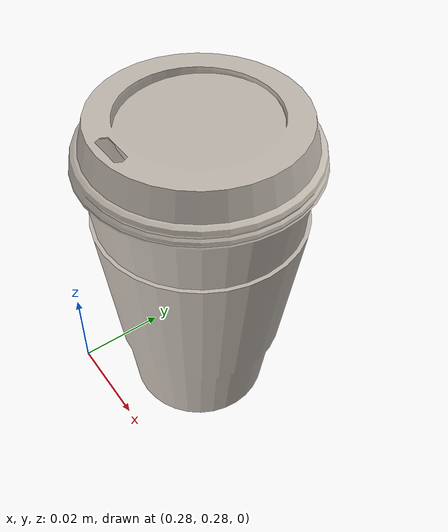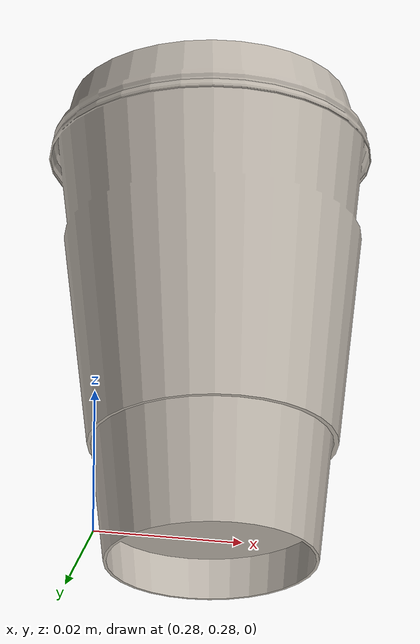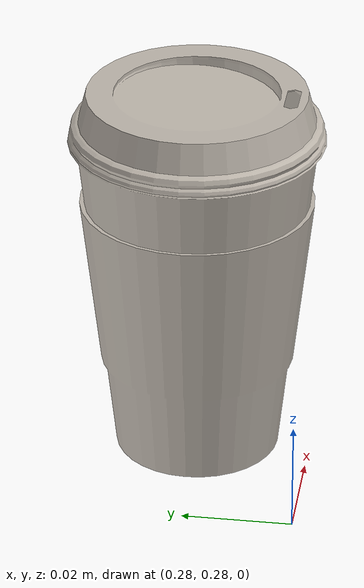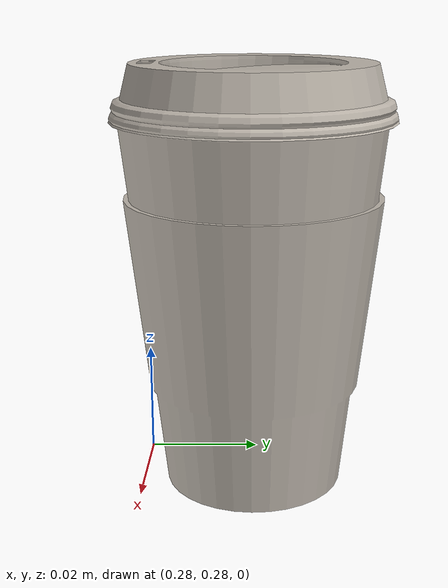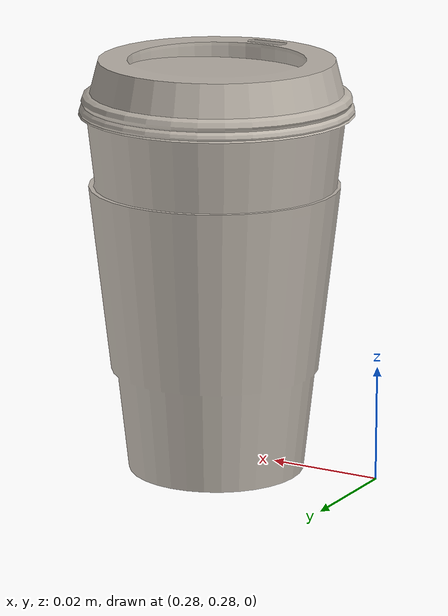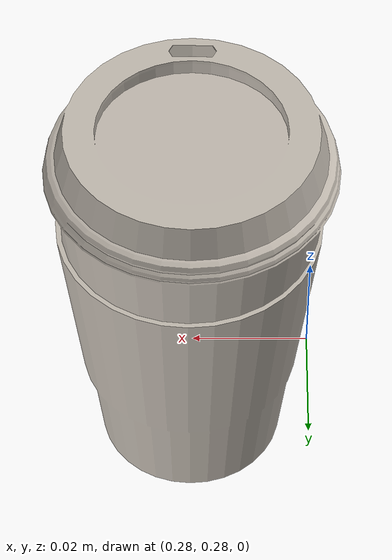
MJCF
<mujoco model="apple_3">
  <asset>
    <mesh file="visual/model_normalized_0.obj" name="model_normalized_0_vis" scale="0.07 0.07 0.07" refquat="1.0 0.0 0.0 0.0"/>

    <texture type="2d" name="apple_image0" file="visual/image0.png"/>
    <material name="Solid.001" texture="apple_image0" specular="0.5" shininess="0.489999983"/>
  </asset>

  <worldbody>
    <body name="apple_1" pos="0.3 0.3 0.04">
      <!-- 在这里直接加freejoint 不可行 -->
      <geom solimp="0.998 0.998 0.001" solref="0.02 1" mass="0.2" friction="1.0 0.5 0.5" type="mesh" mesh="model_normalized_0_vis" conaffinity="1" contype="1" material="Solid.001"/>
    </body>
  </worldbody>
</mujoco>
